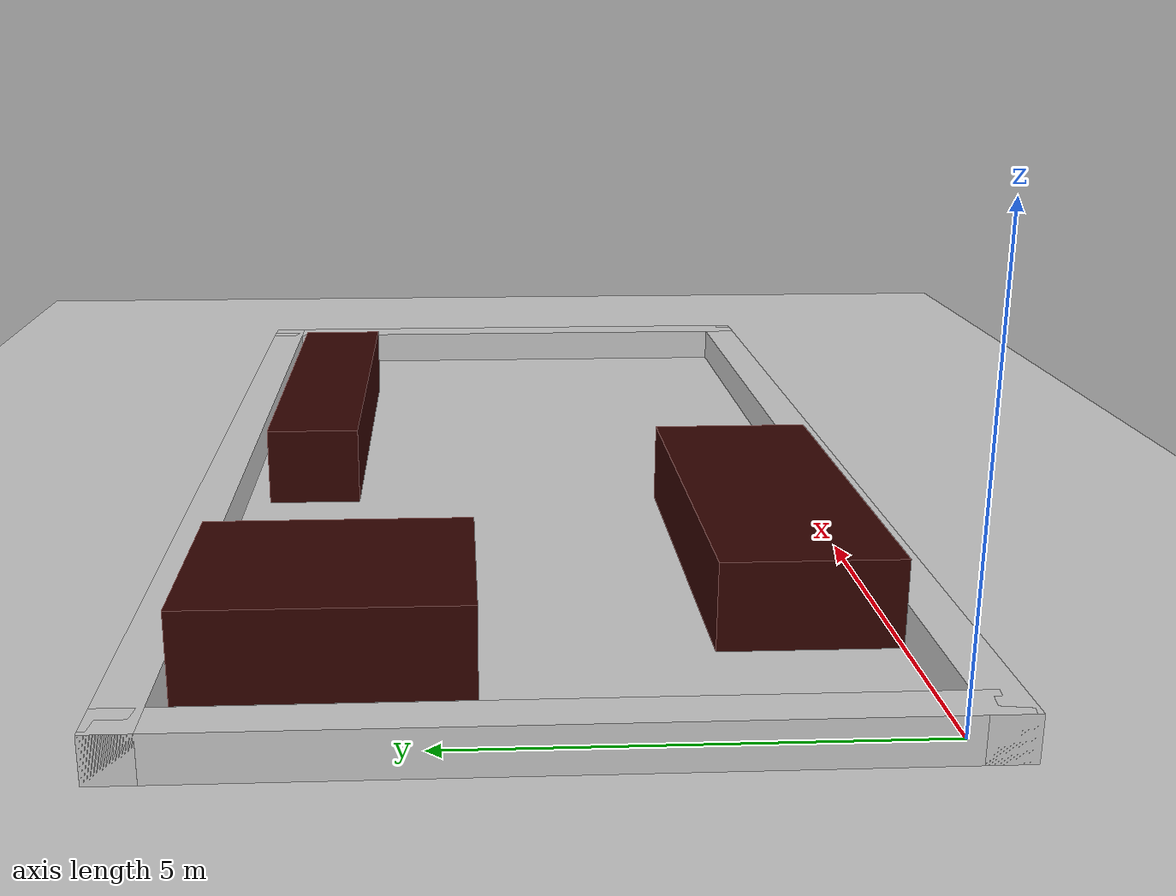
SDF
<?xml version="1.0"?>
<sdf version="1.7">
    <world name="world1">
        <light type="directional" name="sun">
            <cast_shadows>true</cast_shadows>
            <pose>0 0 10 0 0 0</pose>
            <diffuse>0.8 0.8 0.8 1</diffuse>
            <specular>0.2 0.2 0.2 1</specular>
            <attenuation>
                <range>1000</range>
                <constant>0.9</constant>
                <linear>0.01</linear>
                <quadratic>0.001</quadratic>
            </attenuation>
            <direction>-0.5 0.1 -0.9</direction>
        </light>

        <model name="ground_plane">
            <static>true</static>
            <link name="link">
                <collision name="collision">
                    <geometry>
                        <plane>
                            <normal>0 0 1</normal>
                        </plane>
                    </geometry>
                </collision>
                <visual name="visual">
                    <geometry>
                        <plane>
                            <normal>0 0 1</normal>
                            <size>100 100</size>
                        </plane>
                    </geometry>
                    <material>
                        <ambient>0.8 0.8 0.8 1</ambient>
                        <diffuse>0.8 0.8 0.8 1</diffuse>
                        <specular>0.8 0.8 0.8 1</specular>
                    </material>
                </visual>
            </link>
        </model>
        <model name="obstacle1">
        <static>true</static>
        <pose>4.5 1.0 0.5 0 0 0</pose>
        <link name="link">
            <collision name="collision">
            <geometry>
                <box>
                <size>5 2 1</size>
                </box>
            </geometry>
            </collision>
            <visual name="visual">
            <geometry>
                <box>
                <size>5 2 1</size>
                </box>
            </geometry>
            <material>
                <ambient>0.1 0.1 0.1 1</ambient>
                <diffuse>0.2 0.01 0 1</diffuse>
                <specular>0.2 0.01 0 1</specular>
            </material>
            </visual>
        </link>
        </model>
        <model name="obstacle2">
        <static>true</static>
        <pose>2.25 6.0 0.5 0 0 0</pose>
        <link name="link">
            <collision name="collision">
            <geometry>
                <box>
                <size>2.5 3 1</size>
                </box>
            </geometry>
            </collision>
            <visual name="visual">
            <geometry>
                <box>
                <size>2.5 3 1</size>
                </box>
            </geometry>
            <material>
                <ambient>0.1 0.1 0.1 1</ambient>
                <diffuse>0.2 0.01 0 1</diffuse>
                <specular>0.2 0.01 0 1</specular>
            </material>
            </visual>
        </link>
        </model>
        <model name="obstacle3">
        <static>true</static>
        <pose>10.0 6.6 0.5 0 0 0</pose>
        <link name="link">
            <collision name="collision">
            <geometry>
                <box>
                <size>6 1.2 1</size>
                </box>
            </geometry>
            </collision>
            <visual name="visual">
            <geometry>
                <box>
                <size>6 1.2 1</size>
                </box>
            </geometry>
            <material>
                <ambient>0.1 0.1 0.1 1</ambient>
                <diffuse>0.2 0.01 0 1</diffuse>
                <specular>0.2 0.01 0 1</specular>
            </material>
            </visual>
        </link>
        </model>
        <model name="bottom_wall">
        <static>true</static>
        <pose>7.5 -0.25 0.25 0 0 0</pose>
        <link name="link">
            <collision name="collision">
            <geometry>
                <box>
                <size>16.0 0.5 0.5</size>
                </box>
            </geometry>
            </collision>
            <visual name="visual">
            <geometry>
                <box>
                <size>16.0 0.5 0.5</size>
                </box>
            </geometry>
            <material>
                <ambient>0.8 0.8 0.8 1</ambient>
                <diffuse>0.8 0.8 0.8 1</diffuse>
                <specular>0 0.02 0.1 1</specular>
            </material>
            </visual>
        </link>
        </model>
        <model name="top_wall">
        <static>true</static>
        <pose>7.5 7.75 0.25 0 0 0</pose>
        <link name="link">
            <collision name="collision">
            <geometry>
                <box>
                <size>16.0 0.5 0.5</size>
                </box>
            </geometry>
            </collision>
            <visual name="visual">
            <geometry>
                <box>
                <size>16.0 0.5 0.5</size>
                </box>
            </geometry>
            <material>
                <ambient>0.8 0.8 0.8 1</ambient>
                <diffuse>0.8 0.8 0.8 1</diffuse>
                <specular>0 0.02 0.1 1</specular>
            </material>
            </visual>
        </link>
        </model>
        <model name="left_wall">
        <static>true</static>
        <pose>-0.25 3.75 0.25 0 0 0</pose>
        <link name="link">
            <collision name="collision">
            <geometry>
                <box>
                <size>0.5 8.5 0.5</size>
                </box>
            </geometry>
            </collision>
            <visual name="visual">
            <geometry>
                <box>
                <size>0.5 8.5 0.5</size>
                </box>
            </geometry>
            <material>
                <ambient>0.8 0.8 0.8 1</ambient>
                <diffuse>0.8 0.8 0.8 1</diffuse>
                <specular>0 0.02 0.1 1</specular>
            </material>
            </visual>
        </link>
        </model>
        <model name="right_wall">
        <static>true</static>
        <pose>15.25 3.75 0.25 0 0 0</pose>
        <link name="link">
            <collision name="collision">
            <geometry>
                <box>
                <size>0.5 8.5 0.5</size>
                </box>
            </geometry>
            </collision>
            <visual name="visual">
            <geometry>
                <box>
                <size>0.5 8.5 0.5</size>
                </box>
            </geometry>
            <material>
                <ambient>0.8 0.8 0.8 1</ambient>
                <diffuse>0.8 0.8 0.8 1</diffuse>
                <specular>0 0.02 0.1 1</specular>
            </material>
            </visual>
        </link>
        </model>
    </world>
</sdf>
